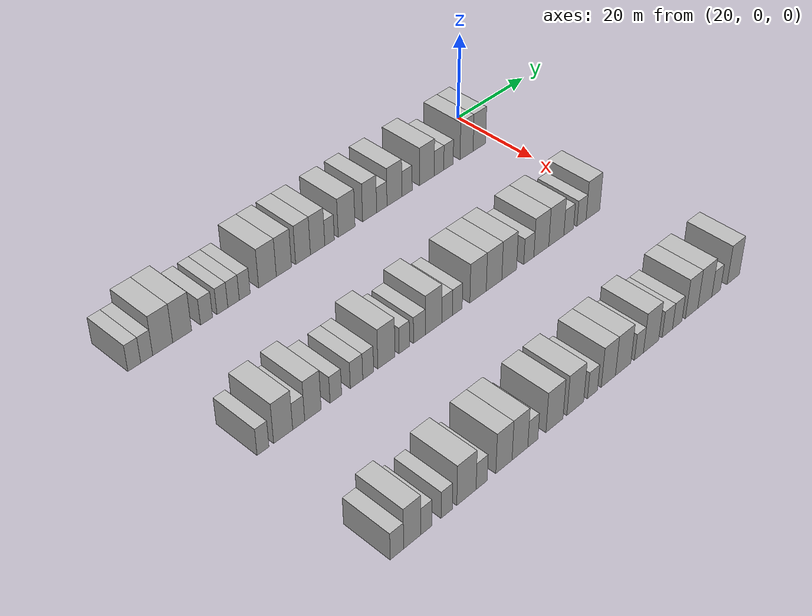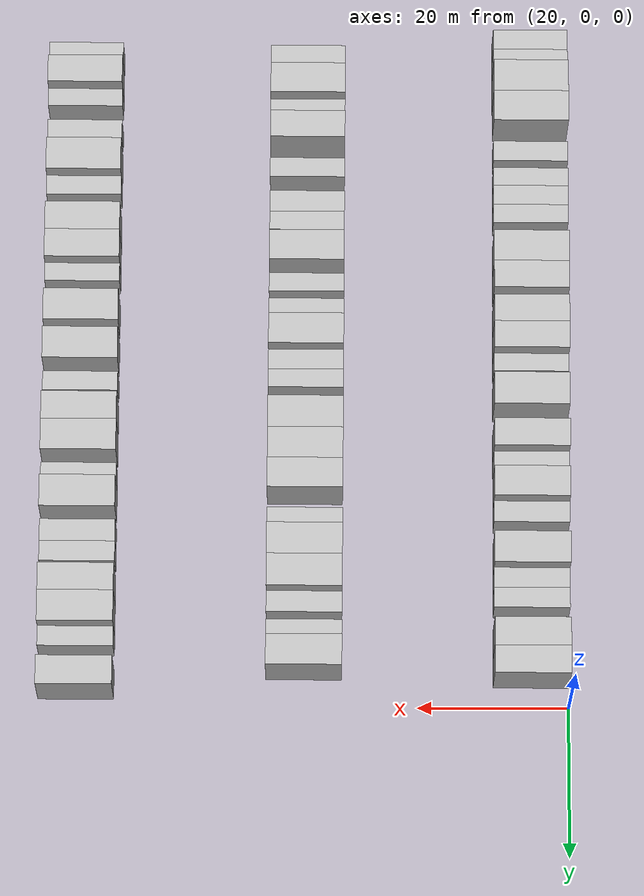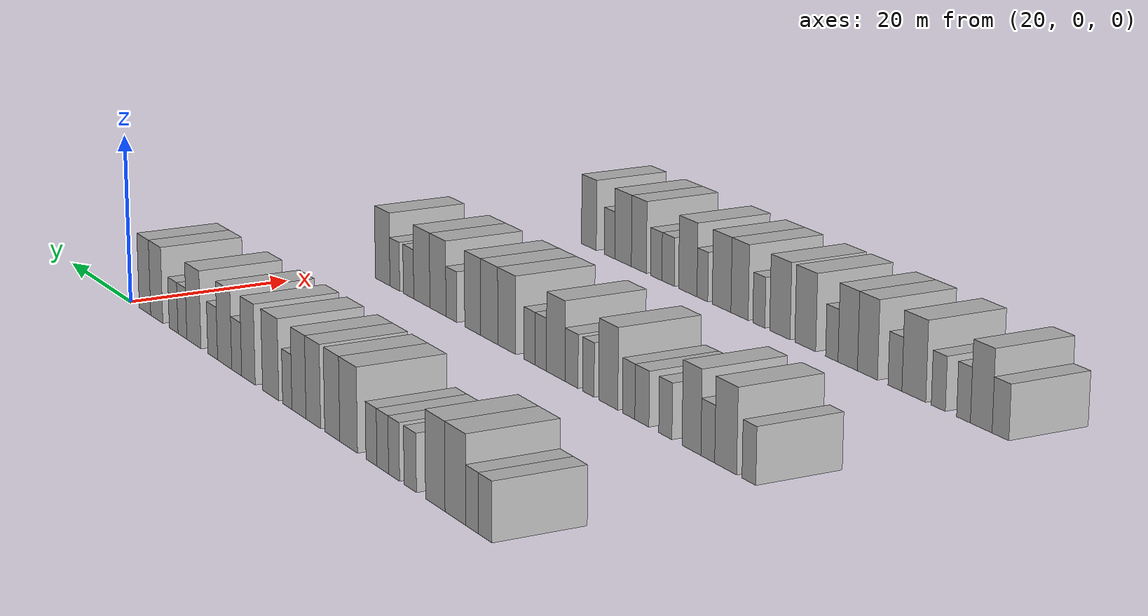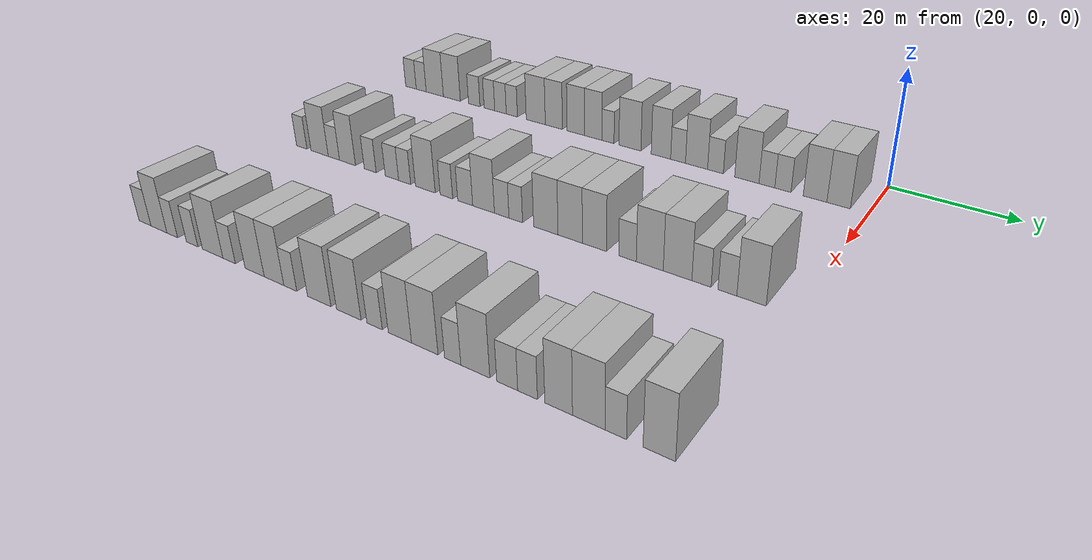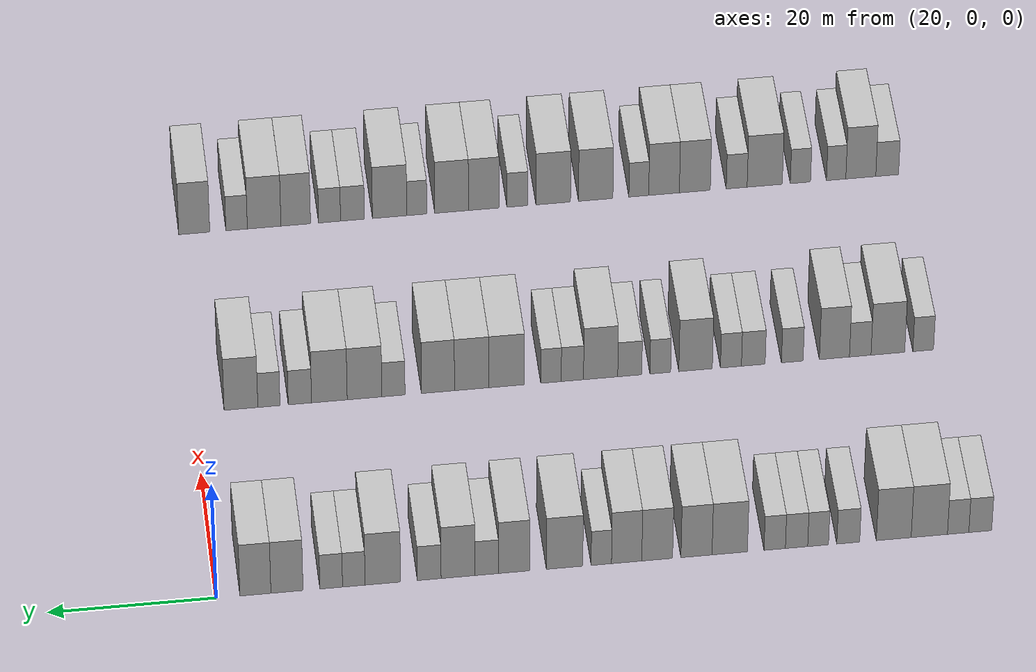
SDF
<sdf version="1.6">
 <world name="default">
  <model name="building_39">
   <static>1</static>
   <pose>25.0000 -91.4606 0 0.000000 0.000000 0.000000</pose>
   <link name="link">
    <pose>0 0 3.00 0 0 0</pose>
    <collision name="collision"><geometry><box><size>10.0000 2.7547 6.0000</size></box></geometry></collision>
    <visual name="visual">
     <cast_shadows>0</cast_shadows>
     <geometry><box><size>10.0000 2.7547 6.0000</size></box></geometry>
     <material>
      <script>
       <uri>model://HANNAS_wall/materials/scripts</uri>
       <uri>model://HANNAS_wall/materials/textures</uri>
       <name>vrc/HANNAS_wall</name>
      </script>
     </material>
    </visual>
   </link>
  </model>
  <model name="building_40">
   <static>1</static>
   <pose>25.0000 -88.7960 0 0.000000 0.000000 0.000000</pose>
   <link name="link">
    <pose>0 0 3.00 0 0 0</pose>
    <collision name="collision"><geometry><box><size>10.0000 2.5745 6.0000</size></box></geometry></collision>
    <visual name="visual">
     <cast_shadows>0</cast_shadows>
     <geometry><box><size>10.0000 2.5745 6.0000</size></box></geometry>
     <material>
      <script>
       <uri>model://HANNAS_wall/materials/scripts</uri>
       <uri>model://HANNAS_wall/materials/textures</uri>
       <name>vrc/HANNAS_wall</name>
      </script>
     </material>
    </visual>
   </link>
  </model>
  <model name="building_41">
   <static>1</static>
   <pose>25.0000 -85.3223 0 0.000000 0.000000 0.000000</pose>
   <link name="link">
    <pose>0 0 4.50 0 0 0</pose>
    <collision name="collision"><geometry><box><size>10.0000 4.3730 9.0000</size></box></geometry></collision>
    <visual name="visual">
     <cast_shadows>0</cast_shadows>
     <geometry><box><size>10.0000 4.3730 9.0000</size></box></geometry>
     <material>
      <script>
       <uri>model://HANNAS_wall/materials/scripts</uri>
       <uri>model://HANNAS_wall/materials/textures</uri>
       <name>vrc/HANNAS_wall</name>
      </script>
     </material>
    </visual>
   </link>
  </model>
  <model name="building_42">
   <static>1</static>
   <pose>25.0000 -81.0367 0 0.000000 0.000000 0.000000</pose>
   <link name="link">
    <pose>0 0 4.50 0 0 0</pose>
    <collision name="collision"><geometry><box><size>10.0000 4.1981 9.0000</size></box></geometry></collision>
    <visual name="visual">
     <cast_shadows>0</cast_shadows>
     <geometry><box><size>10.0000 4.1981 9.0000</size></box></geometry>
     <material>
      <script>
       <uri>model://HANNAS_wall/materials/scripts</uri>
       <uri>model://HANNAS_wall/materials/textures</uri>
       <name>vrc/HANNAS_wall</name>
      </script>
     </material>
    </visual>
   </link>
  </model>
  <model name="building_43">
   <static>1</static>
   <pose>25.0000 -75.5629 0 0.000000 0.000000 0.000000</pose>
   <link name="link">
    <pose>0 0 3.00 0 0 0</pose>
    <collision name="collision"><geometry><box><size>10.0000 2.7496 6.0000</size></box></geometry></collision>
    <visual name="visual">
     <cast_shadows>0</cast_shadows>
     <geometry><box><size>10.0000 2.7496 6.0000</size></box></geometry>
     <material>
      <script>
       <uri>model://HANNAS_wall/materials/scripts</uri>
       <uri>model://HANNAS_wall/materials/textures</uri>
       <name>vrc/HANNAS_wall</name>
      </script>
     </material>
    </visual>
   </link>
  </model>
  <model name="building_44">
   <static>1</static>
   <pose>25.0000 -71.9367 0 0.000000 0.000000 0.000000</pose>
   <link name="link">
    <pose>0 0 3.00 0 0 0</pose>
    <collision name="collision"><geometry><box><size>10.0000 2.5026 6.0000</size></box></geometry></collision>
    <visual name="visual">
     <cast_shadows>0</cast_shadows>
     <geometry><box><size>10.0000 2.5026 6.0000</size></box></geometry>
     <material>
      <script>
       <uri>model://HANNAS_wall/materials/scripts</uri>
       <uri>model://HANNAS_wall/materials/textures</uri>
       <name>vrc/HANNAS_wall</name>
      </script>
     </material>
    </visual>
   </link>
  </model>
  <model name="building_45">
   <static>1</static>
   <pose>25.0000 -69.3456 0 0.000000 0.000000 0.000000</pose>
   <link name="link">
    <pose>0 0 3.00 0 0 0</pose>
    <collision name="collision"><geometry><box><size>10.0000 2.6796 6.0000</size></box></geometry></collision>
    <visual name="visual">
     <cast_shadows>0</cast_shadows>
     <geometry><box><size>10.0000 2.6796 6.0000</size></box></geometry>
     <material>
      <script>
       <uri>model://HANNAS_wall/materials/scripts</uri>
       <uri>model://HANNAS_wall/materials/textures</uri>
       <name>vrc/HANNAS_wall</name>
      </script>
     </material>
    </visual>
   </link>
  </model>
  <model name="building_46">
   <static>1</static>
   <pose>25.0000 -66.7231 0 0.000000 0.000000 0.000000</pose>
   <link name="link">
    <pose>0 0 3.00 0 0 0</pose>
    <collision name="collision"><geometry><box><size>10.0000 2.5655 6.0000</size></box></geometry></collision>
    <visual name="visual">
     <cast_shadows>0</cast_shadows>
     <geometry><box><size>10.0000 2.5655 6.0000</size></box></geometry>
     <material>
      <script>
       <uri>model://HANNAS_wall/materials/scripts</uri>
       <uri>model://HANNAS_wall/materials/textures</uri>
       <name>vrc/HANNAS_wall</name>
      </script>
     </material>
    </visual>
   </link>
  </model>
  <model name="building_47">
   <static>1</static>
   <pose>25.0000 -61.3182 0 0.000000 0.000000 0.000000</pose>
   <link name="link">
    <pose>0 0 4.50 0 0 0</pose>
    <collision name="collision"><geometry><box><size>10.0000 4.2443 9.0000</size></box></geometry></collision>
    <visual name="visual">
     <cast_shadows>0</cast_shadows>
     <geometry><box><size>10.0000 4.2443 9.0000</size></box></geometry>
     <material>
      <script>
       <uri>model://HANNAS_wall/materials/scripts</uri>
       <uri>model://HANNAS_wall/materials/textures</uri>
       <name>vrc/HANNAS_wall</name>
      </script>
     </material>
    </visual>
   </link>
  </model>
  <model name="building_48">
   <static>1</static>
   <pose>25.0000 -57.3320 0 0.000000 0.000000 0.000000</pose>
   <link name="link">
    <pose>0 0 4.50 0 0 0</pose>
    <collision name="collision"><geometry><box><size>10.0000 3.7281 9.0000</size></box></geometry></collision>
    <visual name="visual">
     <cast_shadows>0</cast_shadows>
     <geometry><box><size>10.0000 3.7281 9.0000</size></box></geometry>
     <material>
      <script>
       <uri>model://HANNAS_wall/materials/scripts</uri>
       <uri>model://HANNAS_wall/materials/textures</uri>
       <name>vrc/HANNAS_wall</name>
      </script>
     </material>
    </visual>
   </link>
  </model>
  <model name="building_49">
   <static>1</static>
   <pose>25.0000 -52.6227 0 0.000000 0.000000 0.000000</pose>
   <link name="link">
    <pose>0 0 4.50 0 0 0</pose>
    <collision name="collision"><geometry><box><size>10.0000 3.6904 9.0000</size></box></geometry></collision>
    <visual name="visual">
     <cast_shadows>0</cast_shadows>
     <geometry><box><size>10.0000 3.6904 9.0000</size></box></geometry>
     <material>
      <script>
       <uri>model://HANNAS_wall/materials/scripts</uri>
       <uri>model://HANNAS_wall/materials/textures</uri>
       <name>vrc/HANNAS_wall</name>
      </script>
     </material>
    </visual>
   </link>
  </model>
  <model name="building_50">
   <static>1</static>
   <pose>25.0000 -48.9638 0 0.000000 0.000000 0.000000</pose>
   <link name="link">
    <pose>0 0 4.50 0 0 0</pose>
    <collision name="collision"><geometry><box><size>10.0000 3.6275 9.0000</size></box></geometry></collision>
    <visual name="visual">
     <cast_shadows>0</cast_shadows>
     <geometry><box><size>10.0000 3.6275 9.0000</size></box></geometry>
     <material>
      <script>
       <uri>model://HANNAS_wall/materials/scripts</uri>
       <uri>model://HANNAS_wall/materials/textures</uri>
       <name>vrc/HANNAS_wall</name>
      </script>
     </material>
    </visual>
   </link>
  </model>
  <model name="building_51">
   <static>1</static>
   <pose>25.0000 -45.9309 0 0.000000 0.000000 0.000000</pose>
   <link name="link">
    <pose>0 0 3.00 0 0 0</pose>
    <collision name="collision"><geometry><box><size>10.0000 2.4381 6.0000</size></box></geometry></collision>
    <visual name="visual">
     <cast_shadows>0</cast_shadows>
     <geometry><box><size>10.0000 2.4381 6.0000</size></box></geometry>
     <material>
      <script>
       <uri>model://HANNAS_wall/materials/scripts</uri>
       <uri>model://HANNAS_wall/materials/textures</uri>
       <name>vrc/HANNAS_wall</name>
      </script>
     </material>
    </visual>
   </link>
  </model>
  <model name="building_52">
   <static>1</static>
   <pose>25.0000 -41.5327 0 0.000000 0.000000 0.000000</pose>
   <link name="link">
    <pose>0 0 4.50 0 0 0</pose>
    <collision name="collision"><geometry><box><size>10.0000 4.3584 9.0000</size></box></geometry></collision>
    <visual name="visual">
     <cast_shadows>0</cast_shadows>
     <geometry><box><size>10.0000 4.3584 9.0000</size></box></geometry>
     <material>
      <script>
       <uri>model://HANNAS_wall/materials/scripts</uri>
       <uri>model://HANNAS_wall/materials/textures</uri>
       <name>vrc/HANNAS_wall</name>
      </script>
     </material>
    </visual>
   </link>
  </model>
  <model name="building_53">
   <static>1</static>
   <pose>25.0000 -35.4895 0 0.000000 0.000000 0.000000</pose>
   <link name="link">
    <pose>0 0 4.50 0 0 0</pose>
    <collision name="collision"><geometry><box><size>10.0000 3.7280 9.0000</size></box></geometry></collision>
    <visual name="visual">
     <cast_shadows>0</cast_shadows>
     <geometry><box><size>10.0000 3.7280 9.0000</size></box></geometry>
     <material>
      <script>
       <uri>model://HANNAS_wall/materials/scripts</uri>
       <uri>model://HANNAS_wall/materials/textures</uri>
       <name>vrc/HANNAS_wall</name>
      </script>
     </material>
    </visual>
   </link>
  </model>
  <model name="building_54">
   <static>1</static>
   <pose>25.0000 -32.2355 0 0.000000 0.000000 0.000000</pose>
   <link name="link">
    <pose>0 0 3.00 0 0 0</pose>
    <collision name="collision"><geometry><box><size>10.0000 2.7799 6.0000</size></box></geometry></collision>
    <visual name="visual">
     <cast_shadows>0</cast_shadows>
     <geometry><box><size>10.0000 2.7799 6.0000</size></box></geometry>
     <material>
      <script>
       <uri>model://HANNAS_wall/materials/scripts</uri>
       <uri>model://HANNAS_wall/materials/textures</uri>
       <name>vrc/HANNAS_wall</name>
      </script>
     </material>
    </visual>
   </link>
  </model>
  <model name="building_55">
   <static>1</static>
   <pose>25.0000 -28.8138 0 0.000000 0.000000 0.000000</pose>
   <link name="link">
    <pose>0 0 4.50 0 0 0</pose>
    <collision name="collision"><geometry><box><size>10.0000 4.0635 9.0000</size></box></geometry></collision>
    <visual name="visual">
     <cast_shadows>0</cast_shadows>
     <geometry><box><size>10.0000 4.0635 9.0000</size></box></geometry>
     <material>
      <script>
       <uri>model://HANNAS_wall/materials/scripts</uri>
       <uri>model://HANNAS_wall/materials/textures</uri>
       <name>vrc/HANNAS_wall</name>
      </script>
     </material>
    </visual>
   </link>
  </model>
  <model name="building_56">
   <static>1</static>
   <pose>25.0000 -25.3644 0 0.000000 0.000000 0.000000</pose>
   <link name="link">
    <pose>0 0 3.00 0 0 0</pose>
    <collision name="collision"><geometry><box><size>10.0000 2.8352 6.0000</size></box></geometry></collision>
    <visual name="visual">
     <cast_shadows>0</cast_shadows>
     <geometry><box><size>10.0000 2.8352 6.0000</size></box></geometry>
     <material>
      <script>
       <uri>model://HANNAS_wall/materials/scripts</uri>
       <uri>model://HANNAS_wall/materials/textures</uri>
       <name>vrc/HANNAS_wall</name>
      </script>
     </material>
    </visual>
   </link>
  </model>
  <model name="building_57">
   <static>1</static>
   <pose>25.0000 -19.8324 0 0.000000 0.000000 0.000000</pose>
   <link name="link">
    <pose>0 0 4.50 0 0 0</pose>
    <collision name="collision"><geometry><box><size>10.0000 4.2289 9.0000</size></box></geometry></collision>
    <visual name="visual">
     <cast_shadows>0</cast_shadows>
     <geometry><box><size>10.0000 4.2289 9.0000</size></box></geometry>
     <material>
      <script>
       <uri>model://HANNAS_wall/materials/scripts</uri>
       <uri>model://HANNAS_wall/materials/textures</uri>
       <name>vrc/HANNAS_wall</name>
      </script>
     </material>
    </visual>
   </link>
  </model>
  <model name="building_58">
   <static>1</static>
   <pose>25.0000 -16.3738 0 0.000000 0.000000 0.000000</pose>
   <link name="link">
    <pose>0 0 3.00 0 0 0</pose>
    <collision name="collision"><geometry><box><size>10.0000 2.6883 6.0000</size></box></geometry></collision>
    <visual name="visual">
     <cast_shadows>0</cast_shadows>
     <geometry><box><size>10.0000 2.6883 6.0000</size></box></geometry>
     <material>
      <script>
       <uri>model://HANNAS_wall/materials/scripts</uri>
       <uri>model://HANNAS_wall/materials/textures</uri>
       <name>vrc/HANNAS_wall</name>
      </script>
     </material>
    </visual>
   </link>
  </model>
  <model name="building_59">
   <static>1</static>
   <pose>25.0000 -13.6800 0 0.000000 0.000000 0.000000</pose>
   <link name="link">
    <pose>0 0 3.00 0 0 0</pose>
    <collision name="collision"><geometry><box><size>10.0000 2.6993 6.0000</size></box></geometry></collision>
    <visual name="visual">
     <cast_shadows>0</cast_shadows>
     <geometry><box><size>10.0000 2.6993 6.0000</size></box></geometry>
     <material>
      <script>
       <uri>model://HANNAS_wall/materials/scripts</uri>
       <uri>model://HANNAS_wall/materials/textures</uri>
       <name>vrc/HANNAS_wall</name>
      </script>
     </material>
    </visual>
   </link>
  </model>
  <model name="building_60">
   <static>1</static>
   <pose>25.0000 -8.4190 0 0.000000 0.000000 0.000000</pose>
   <link name="link">
    <pose>0 0 4.50 0 0 0</pose>
    <collision name="collision"><geometry><box><size>10.0000 3.8228 9.0000</size></box></geometry></collision>
    <visual name="visual">
     <cast_shadows>0</cast_shadows>
     <geometry><box><size>10.0000 3.8228 9.0000</size></box></geometry>
     <material>
      <script>
       <uri>model://HANNAS_wall/materials/scripts</uri>
       <uri>model://HANNAS_wall/materials/textures</uri>
       <name>vrc/HANNAS_wall</name>
      </script>
     </material>
    </visual>
   </link>
  </model>
  <model name="building_61">
   <static>1</static>
   <pose>25.0000 -4.6636 0 0.000000 0.000000 0.000000</pose>
   <link name="link">
    <pose>0 0 4.50 0 0 0</pose>
    <collision name="collision"><geometry><box><size>10.0000 3.6881 9.0000</size></box></geometry></collision>
    <visual name="visual">
     <cast_shadows>0</cast_shadows>
     <geometry><box><size>10.0000 3.6881 9.0000</size></box></geometry>
     <material>
      <script>
       <uri>model://HANNAS_wall/materials/scripts</uri>
       <uri>model://HANNAS_wall/materials/textures</uri>
       <name>vrc/HANNAS_wall</name>
      </script>
     </material>
    </visual>
   </link>
  </model>
  <model name="building_174">
   <static>1</static>
   <pose>55.0000 -89.1404 0 0.000000 0.000000 0.000000</pose>
   <link name="link">
    <pose>0 0 3.00 0 0 0</pose>
    <collision name="collision"><geometry><box><size>10.0000 2.5405 6.0000</size></box></geometry></collision>
    <visual name="visual">
     <cast_shadows>0</cast_shadows>
     <geometry><box><size>10.0000 2.5405 6.0000</size></box></geometry>
     <material>
      <script>
       <uri>model://HANNAS_wall/materials/scripts</uri>
       <uri>model://HANNAS_wall/materials/textures</uri>
       <name>vrc/HANNAS_wall</name>
      </script>
     </material>
    </visual>
   </link>
  </model>
  <model name="building_175">
   <static>1</static>
   <pose>55.0000 -84.7976 0 0.000000 0.000000 0.000000</pose>
   <link name="link">
    <pose>0 0 4.50 0 0 0</pose>
    <collision name="collision"><geometry><box><size>10.0000 4.1451 9.0000</size></box></geometry></collision>
    <visual name="visual">
     <cast_shadows>0</cast_shadows>
     <geometry><box><size>10.0000 4.1451 9.0000</size></box></geometry>
     <material>
      <script>
       <uri>model://HANNAS_wall/materials/scripts</uri>
       <uri>model://HANNAS_wall/materials/textures</uri>
       <name>vrc/HANNAS_wall</name>
      </script>
     </material>
    </visual>
   </link>
  </model>
  <model name="building_176">
   <static>1</static>
   <pose>55.0000 -81.3994 0 0.000000 0.000000 0.000000</pose>
   <link name="link">
    <pose>0 0 3.00 0 0 0</pose>
    <collision name="collision"><geometry><box><size>10.0000 2.6512 6.0000</size></box></geometry></collision>
    <visual name="visual">
     <cast_shadows>0</cast_shadows>
     <geometry><box><size>10.0000 2.6512 6.0000</size></box></geometry>
     <material>
      <script>
       <uri>model://HANNAS_wall/materials/scripts</uri>
       <uri>model://HANNAS_wall/materials/textures</uri>
       <name>vrc/HANNAS_wall</name>
      </script>
     </material>
    </visual>
   </link>
  </model>
  <model name="building_177">
   <static>1</static>
   <pose>55.0000 -78.2285 0 0.000000 0.000000 0.000000</pose>
   <link name="link">
    <pose>0 0 4.50 0 0 0</pose>
    <collision name="collision"><geometry><box><size>10.0000 3.6905 9.0000</size></box></geometry></collision>
    <visual name="visual">
     <cast_shadows>0</cast_shadows>
     <geometry><box><size>10.0000 3.6905 9.0000</size></box></geometry>
     <material>
      <script>
       <uri>model://HANNAS_wall/materials/scripts</uri>
       <uri>model://HANNAS_wall/materials/textures</uri>
       <name>vrc/HANNAS_wall</name>
      </script>
     </material>
    </visual>
   </link>
  </model>
  <model name="building_178">
   <static>1</static>
   <pose>55.0000 -73.0543 0 0.000000 0.000000 0.000000</pose>
   <link name="link">
    <pose>0 0 3.00 0 0 0</pose>
    <collision name="collision"><geometry><box><size>10.0000 2.6578 6.0000</size></box></geometry></collision>
    <visual name="visual">
     <cast_shadows>0</cast_shadows>
     <geometry><box><size>10.0000 2.6578 6.0000</size></box></geometry>
     <material>
      <script>
       <uri>model://HANNAS_wall/materials/scripts</uri>
       <uri>model://HANNAS_wall/materials/textures</uri>
       <name>vrc/HANNAS_wall</name>
      </script>
     </material>
    </visual>
   </link>
  </model>
  <model name="building_179">
   <static>1</static>
   <pose>55.0000 -68.2735 0 0.000000 0.000000 0.000000</pose>
   <link name="link">
    <pose>0 0 3.00 0 0 0</pose>
    <collision name="collision"><geometry><box><size>10.0000 2.9038 6.0000</size></box></geometry></collision>
    <visual name="visual">
     <cast_shadows>0</cast_shadows>
     <geometry><box><size>10.0000 2.9038 6.0000</size></box></geometry>
     <material>
      <script>
       <uri>model://HANNAS_wall/materials/scripts</uri>
       <uri>model://HANNAS_wall/materials/textures</uri>
       <name>vrc/HANNAS_wall</name>
      </script>
     </material>
    </visual>
   </link>
  </model>
  <model name="building_180">
   <static>1</static>
   <pose>55.0000 -65.5359 0 0.000000 0.000000 0.000000</pose>
   <link name="link">
    <pose>0 0 3.00 0 0 0</pose>
    <collision name="collision"><geometry><box><size>10.0000 2.5714 6.0000</size></box></geometry></collision>
    <visual name="visual">
     <cast_shadows>0</cast_shadows>
     <geometry><box><size>10.0000 2.5714 6.0000</size></box></geometry>
     <material>
      <script>
       <uri>model://HANNAS_wall/materials/scripts</uri>
       <uri>model://HANNAS_wall/materials/textures</uri>
       <name>vrc/HANNAS_wall</name>
      </script>
     </material>
    </visual>
   </link>
  </model>
  <model name="building_181">
   <static>1</static>
   <pose>55.0000 -61.1989 0 0.000000 0.000000 0.000000</pose>
   <link name="link">
    <pose>0 0 4.50 0 0 0</pose>
    <collision name="collision"><geometry><box><size>10.0000 4.1026 9.0000</size></box></geometry></collision>
    <visual name="visual">
     <cast_shadows>0</cast_shadows>
     <geometry><box><size>10.0000 4.1026 9.0000</size></box></geometry>
     <material>
      <script>
       <uri>model://HANNAS_wall/materials/scripts</uri>
       <uri>model://HANNAS_wall/materials/textures</uri>
       <name>vrc/HANNAS_wall</name>
      </script>
     </material>
    </visual>
   </link>
  </model>
  <model name="building_182">
   <static>1</static>
   <pose>55.0000 -56.8801 0 0.000000 0.000000 0.000000</pose>
   <link name="link">
    <pose>0 0 3.00 0 0 0</pose>
    <collision name="collision"><geometry><box><size>10.0000 2.5350 6.0000</size></box></geometry></collision>
    <visual name="visual">
     <cast_shadows>0</cast_shadows>
     <geometry><box><size>10.0000 2.5350 6.0000</size></box></geometry>
     <material>
      <script>
       <uri>model://HANNAS_wall/materials/scripts</uri>
       <uri>model://HANNAS_wall/materials/textures</uri>
       <name>vrc/HANNAS_wall</name>
      </script>
     </material>
    </visual>
   </link>
  </model>
  <model name="building_183">
   <static>1</static>
   <pose>55.0000 -53.1420 0 0.000000 0.000000 0.000000</pose>
   <link name="link">
    <pose>0 0 3.00 0 0 0</pose>
    <collision name="collision"><geometry><box><size>10.0000 2.9413 6.0000</size></box></geometry></collision>
    <visual name="visual">
     <cast_shadows>0</cast_shadows>
     <geometry><box><size>10.0000 2.9413 6.0000</size></box></geometry>
     <material>
      <script>
       <uri>model://HANNAS_wall/materials/scripts</uri>
       <uri>model://HANNAS_wall/materials/textures</uri>
       <name>vrc/HANNAS_wall</name>
      </script>
     </material>
    </visual>
   </link>
  </model>
  <model name="building_184">
   <static>1</static>
   <pose>55.0000 -49.5816 0 0.000000 0.000000 0.000000</pose>
   <link name="link">
    <pose>0 0 4.50 0 0 0</pose>
    <collision name="collision"><geometry><box><size>10.0000 4.1795 9.0000</size></box></geometry></collision>
    <visual name="visual">
     <cast_shadows>0</cast_shadows>
     <geometry><box><size>10.0000 4.1795 9.0000</size></box></geometry>
     <material>
      <script>
       <uri>model://HANNAS_wall/materials/scripts</uri>
       <uri>model://HANNAS_wall/materials/textures</uri>
       <name>vrc/HANNAS_wall</name>
      </script>
     </material>
    </visual>
   </link>
  </model>
  <model name="building_185">
   <static>1</static>
   <pose>55.0000 -46.1320 0 0.000000 0.000000 0.000000</pose>
   <link name="link">
    <pose>0 0 3.00 0 0 0</pose>
    <collision name="collision"><geometry><box><size>10.0000 2.7198 6.0000</size></box></geometry></collision>
    <visual name="visual">
     <cast_shadows>0</cast_shadows>
     <geometry><box><size>10.0000 2.7198 6.0000</size></box></geometry>
     <material>
      <script>
       <uri>model://HANNAS_wall/materials/scripts</uri>
       <uri>model://HANNAS_wall/materials/textures</uri>
       <name>vrc/HANNAS_wall</name>
      </script>
     </material>
    </visual>
   </link>
  </model>
  <model name="building_186">
   <static>1</static>
   <pose>55.0000 -43.5175 0 0.000000 0.000000 0.000000</pose>
   <link name="link">
    <pose>0 0 3.00 0 0 0</pose>
    <collision name="collision"><geometry><box><size>10.0000 2.5092 6.0000</size></box></geometry></collision>
    <visual name="visual">
     <cast_shadows>0</cast_shadows>
     <geometry><box><size>10.0000 2.5092 6.0000</size></box></geometry>
     <material>
      <script>
       <uri>model://HANNAS_wall/materials/scripts</uri>
       <uri>model://HANNAS_wall/materials/textures</uri>
       <name>vrc/HANNAS_wall</name>
      </script>
     </material>
    </visual>
   </link>
  </model>
  <model name="building_187">
   <static>1</static>
   <pose>55.0000 -38.0969 0 0.000000 0.000000 0.000000</pose>
   <link name="link">
    <pose>0 0 4.50 0 0 0</pose>
    <collision name="collision"><geometry><box><size>10.0000 4.3320 9.0000</size></box></geometry></collision>
    <visual name="visual">
     <cast_shadows>0</cast_shadows>
     <geometry><box><size>10.0000 4.3320 9.0000</size></box></geometry>
     <material>
      <script>
       <uri>model://HANNAS_wall/materials/scripts</uri>
       <uri>model://HANNAS_wall/materials/textures</uri>
       <name>vrc/HANNAS_wall</name>
      </script>
     </material>
    </visual>
   </link>
  </model>
  <model name="building_188">
   <static>1</static>
   <pose>55.0000 -33.8358 0 0.000000 0.000000 0.000000</pose>
   <link name="link">
    <pose>0 0 4.50 0 0 0</pose>
    <collision name="collision"><geometry><box><size>10.0000 4.1904 9.0000</size></box></geometry></collision>
    <visual name="visual">
     <cast_shadows>0</cast_shadows>
     <geometry><box><size>10.0000 4.1904 9.0000</size></box></geometry>
     <material>
      <script>
       <uri>model://HANNAS_wall/materials/scripts</uri>
       <uri>model://HANNAS_wall/materials/textures</uri>
       <name>vrc/HANNAS_wall</name>
      </script>
     </material>
    </visual>
   </link>
  </model>
  <model name="building_189">
   <static>1</static>
   <pose>55.0000 -29.7267 0 0.000000 0.000000 0.000000</pose>
   <link name="link">
    <pose>0 0 4.50 0 0 0</pose>
    <collision name="collision"><geometry><box><size>10.0000 4.0277 9.0000</size></box></geometry></collision>
    <visual name="visual">
     <cast_shadows>0</cast_shadows>
     <geometry><box><size>10.0000 4.0277 9.0000</size></box></geometry>
     <material>
      <script>
       <uri>model://HANNAS_wall/materials/scripts</uri>
       <uri>model://HANNAS_wall/materials/textures</uri>
       <name>vrc/HANNAS_wall</name>
      </script>
     </material>
    </visual>
   </link>
  </model>
  <model name="building_190">
   <static>1</static>
   <pose>55.0000 -24.3051 0 0.000000 0.000000 0.000000</pose>
   <link name="link">
    <pose>0 0 3.00 0 0 0</pose>
    <collision name="collision"><geometry><box><size>10.0000 2.8154 6.0000</size></box></geometry></collision>
    <visual name="visual">
     <cast_shadows>0</cast_shadows>
     <geometry><box><size>10.0000 2.8154 6.0000</size></box></geometry>
     <material>
      <script>
       <uri>model://HANNAS_wall/materials/scripts</uri>
       <uri>model://HANNAS_wall/materials/textures</uri>
       <name>vrc/HANNAS_wall</name>
      </script>
     </material>
    </visual>
   </link>
  </model>
  <model name="building_191">
   <static>1</static>
   <pose>55.0000 -20.7871 0 0.000000 0.000000 0.000000</pose>
   <link name="link">
    <pose>0 0 4.50 0 0 0</pose>
    <collision name="collision"><geometry><box><size>10.0000 4.2207 9.0000</size></box></geometry></collision>
    <visual name="visual">
     <cast_shadows>0</cast_shadows>
     <geometry><box><size>10.0000 4.2207 9.0000</size></box></geometry>
     <material>
      <script>
       <uri>model://HANNAS_wall/materials/scripts</uri>
       <uri>model://HANNAS_wall/materials/textures</uri>
       <name>vrc/HANNAS_wall</name>
      </script>
     </material>
    </visual>
   </link>
  </model>
  <model name="building_192">
   <static>1</static>
   <pose>55.0000 -16.5079 0 0.000000 0.000000 0.000000</pose>
   <link name="link">
    <pose>0 0 4.50 0 0 0</pose>
    <collision name="collision"><geometry><box><size>10.0000 4.3378 9.0000</size></box></geometry></collision>
    <visual name="visual">
     <cast_shadows>0</cast_shadows>
     <geometry><box><size>10.0000 4.3378 9.0000</size></box></geometry>
     <material>
      <script>
       <uri>model://HANNAS_wall/materials/scripts</uri>
       <uri>model://HANNAS_wall/materials/textures</uri>
       <name>vrc/HANNAS_wall</name>
      </script>
     </material>
    </visual>
   </link>
  </model>
  <model name="building_193">
   <static>1</static>
   <pose>55.0000 -12.9216 0 0.000000 0.000000 0.000000</pose>
   <link name="link">
    <pose>0 0 3.00 0 0 0</pose>
    <collision name="collision"><geometry><box><size>10.0000 2.8348 6.0000</size></box></geometry></collision>
    <visual name="visual">
     <cast_shadows>0</cast_shadows>
     <geometry><box><size>10.0000 2.8348 6.0000</size></box></geometry>
     <material>
      <script>
       <uri>model://HANNAS_wall/materials/scripts</uri>
       <uri>model://HANNAS_wall/materials/textures</uri>
       <name>vrc/HANNAS_wall</name>
      </script>
     </material>
    </visual>
   </link>
  </model>
  <model name="building_194">
   <static>1</static>
   <pose>55.0000 -9.1570 0 0.000000 0.000000 0.000000</pose>
   <link name="link">
    <pose>0 0 3.00 0 0 0</pose>
    <collision name="collision"><geometry><box><size>10.0000 2.6945 6.0000</size></box></geometry></collision>
    <visual name="visual">
     <cast_shadows>0</cast_shadows>
     <geometry><box><size>10.0000 2.6945 6.0000</size></box></geometry>
     <material>
      <script>
       <uri>model://HANNAS_wall/materials/scripts</uri>
       <uri>model://HANNAS_wall/materials/textures</uri>
       <name>vrc/HANNAS_wall</name>
      </script>
     </material>
    </visual>
   </link>
  </model>
  <model name="building_195">
   <static>1</static>
   <pose>55.0000 -5.7617 0 0.000000 0.000000 0.000000</pose>
   <link name="link">
    <pose>0 0 4.50 0 0 0</pose>
    <collision name="collision"><geometry><box><size>10.0000 4.0960 9.0000</size></box></geometry></collision>
    <visual name="visual">
     <cast_shadows>0</cast_shadows>
     <geometry><box><size>10.0000 4.0960 9.0000</size></box></geometry>
     <material>
      <script>
       <uri>model://HANNAS_wall/materials/scripts</uri>
       <uri>model://HANNAS_wall/materials/textures</uri>
       <name>vrc/HANNAS_wall</name>
      </script>
     </material>
    </visual>
   </link>
  </model>
  <model name="building_306">
   <static>1</static>
   <pose>85.0000 -89.1768 0 0.000000 0.000000 0.000000</pose>
   <link name="link">
    <pose>0 0 3.00 0 0 0</pose>
    <collision name="collision"><geometry><box><size>10.0000 2.8586 6.0000</size></box></geometry></collision>
    <visual name="visual">
     <cast_shadows>0</cast_shadows>
     <geometry><box><size>10.0000 2.8586 6.0000</size></box></geometry>
     <material>
      <script>
       <uri>model://HANNAS_wall/materials/scripts</uri>
       <uri>model://HANNAS_wall/materials/textures</uri>
       <name>vrc/HANNAS_wall</name>
      </script>
     </material>
    </visual>
   </link>
  </model>
  <model name="building_307">
   <static>1</static>
   <pose>85.0000 -85.8670 0 0.000000 0.000000 0.000000</pose>
   <link name="link">
    <pose>0 0 4.50 0 0 0</pose>
    <collision name="collision"><geometry><box><size>10.0000 3.7610 9.0000</size></box></geometry></collision>
    <visual name="visual">
     <cast_shadows>0</cast_shadows>
     <geometry><box><size>10.0000 3.7610 9.0000</size></box></geometry>
     <material>
      <script>
       <uri>model://HANNAS_wall/materials/scripts</uri>
       <uri>model://HANNAS_wall/materials/textures</uri>
       <name>vrc/HANNAS_wall</name>
      </script>
     </material>
    </visual>
   </link>
  </model>
  <model name="building_308">
   <static>1</static>
   <pose>85.0000 -82.7755 0 0.000000 0.000000 0.000000</pose>
   <link name="link">
    <pose>0 0 3.00 0 0 0</pose>
    <collision name="collision"><geometry><box><size>10.0000 2.4220 6.0000</size></box></geometry></collision>
    <visual name="visual">
     <cast_shadows>0</cast_shadows>
     <geometry><box><size>10.0000 2.4220 6.0000</size></box></geometry>
     <material>
      <script>
       <uri>model://HANNAS_wall/materials/scripts</uri>
       <uri>model://HANNAS_wall/materials/textures</uri>
       <name>vrc/HANNAS_wall</name>
      </script>
     </material>
    </visual>
   </link>
  </model>
  <model name="building_309">
   <static>1</static>
   <pose>85.0000 -78.2965 0 0.000000 0.000000 0.000000</pose>
   <link name="link">
    <pose>0 0 3.00 0 0 0</pose>
    <collision name="collision"><geometry><box><size>10.0000 2.5358 6.0000</size></box></geometry></collision>
    <visual name="visual">
     <cast_shadows>0</cast_shadows>
     <geometry><box><size>10.0000 2.5358 6.0000</size></box></geometry>
     <material>
      <script>
       <uri>model://HANNAS_wall/materials/scripts</uri>
       <uri>model://HANNAS_wall/materials/textures</uri>
       <name>vrc/HANNAS_wall</name>
      </script>
     </material>
    </visual>
   </link>
  </model>
  <model name="building_310">
   <static>1</static>
   <pose>85.0000 -73.8247 0 0.000000 0.000000 0.000000</pose>
   <link name="link">
    <pose>0 0 4.50 0 0 0</pose>
    <collision name="collision"><geometry><box><size>10.0000 4.4079 9.0000</size></box></geometry></collision>
    <visual name="visual">
     <cast_shadows>0</cast_shadows>
     <geometry><box><size>10.0000 4.4079 9.0000</size></box></geometry>
     <material>
      <script>
       <uri>model://HANNAS_wall/materials/scripts</uri>
       <uri>model://HANNAS_wall/materials/textures</uri>
       <name>vrc/HANNAS_wall</name>
      </script>
     </material>
    </visual>
   </link>
  </model>
  <model name="building_311">
   <static>1</static>
   <pose>85.0000 -70.3159 0 0.000000 0.000000 0.000000</pose>
   <link name="link">
    <pose>0 0 3.00 0 0 0</pose>
    <collision name="collision"><geometry><box><size>10.0000 2.6095 6.0000</size></box></geometry></collision>
    <visual name="visual">
     <cast_shadows>0</cast_shadows>
     <geometry><box><size>10.0000 2.6095 6.0000</size></box></geometry>
     <material>
      <script>
       <uri>model://HANNAS_wall/materials/scripts</uri>
       <uri>model://HANNAS_wall/materials/textures</uri>
       <name>vrc/HANNAS_wall</name>
      </script>
     </material>
    </visual>
   </link>
  </model>
  <model name="building_312">
   <static>1</static>
   <pose>85.0000 -65.0784 0 0.000000 0.000000 0.000000</pose>
   <link name="link">
    <pose>0 0 4.50 0 0 0</pose>
    <collision name="collision"><geometry><box><size>10.0000 3.8656 9.0000</size></box></geometry></collision>
    <visual name="visual">
     <cast_shadows>0</cast_shadows>
     <geometry><box><size>10.0000 3.8656 9.0000</size></box></geometry>
     <material>
      <script>
       <uri>model://HANNAS_wall/materials/scripts</uri>
       <uri>model://HANNAS_wall/materials/textures</uri>
       <name>vrc/HANNAS_wall</name>
      </script>
     </material>
    </visual>
   </link>
  </model>
  <model name="building_313">
   <static>1</static>
   <pose>85.0000 -61.2323 0 0.000000 0.000000 0.000000</pose>
   <link name="link">
    <pose>0 0 4.50 0 0 0</pose>
    <collision name="collision"><geometry><box><size>10.0000 3.8264 9.0000</size></box></geometry></collision>
    <visual name="visual">
     <cast_shadows>0</cast_shadows>
     <geometry><box><size>10.0000 3.8264 9.0000</size></box></geometry>
     <material>
      <script>
       <uri>model://HANNAS_wall/materials/scripts</uri>
       <uri>model://HANNAS_wall/materials/textures</uri>
       <name>vrc/HANNAS_wall</name>
      </script>
     </material>
    </visual>
   </link>
  </model>
  <model name="building_314">
   <static>1</static>
   <pose>85.0000 -58.0804 0 0.000000 0.000000 0.000000</pose>
   <link name="link">
    <pose>0 0 3.00 0 0 0</pose>
    <collision name="collision"><geometry><box><size>10.0000 2.4775 6.0000</size></box></geometry></collision>
    <visual name="visual">
     <cast_shadows>0</cast_shadows>
     <geometry><box><size>10.0000 2.4775 6.0000</size></box></geometry>
     <material>
      <script>
       <uri>model://HANNAS_wall/materials/scripts</uri>
       <uri>model://HANNAS_wall/materials/textures</uri>
       <name>vrc/HANNAS_wall</name>
      </script>
     </material>
    </visual>
   </link>
  </model>
  <model name="building_315">
   <static>1</static>
   <pose>85.0000 -52.6966 0 0.000000 0.000000 0.000000</pose>
   <link name="link">
    <pose>0 0 4.50 0 0 0</pose>
    <collision name="collision"><geometry><box><size>10.0000 4.2899 9.0000</size></box></geometry></collision>
    <visual name="visual">
     <cast_shadows>0</cast_shadows>
     <geometry><box><size>10.0000 4.2899 9.0000</size></box></geometry>
     <material>
      <script>
       <uri>model://HANNAS_wall/materials/scripts</uri>
       <uri>model://HANNAS_wall/materials/textures</uri>
       <name>vrc/HANNAS_wall</name>
      </script>
     </material>
    </visual>
   </link>
  </model>
  <model name="building_316">
   <static>1</static>
   <pose>85.0000 -47.3974 0 0.000000 0.000000 0.000000</pose>
   <link name="link">
    <pose>0 0 4.50 0 0 0</pose>
    <collision name="collision"><geometry><box><size>10.0000 4.3085 9.0000</size></box></geometry></collision>
    <visual name="visual">
     <cast_shadows>0</cast_shadows>
     <geometry><box><size>10.0000 4.3085 9.0000</size></box></geometry>
     <material>
      <script>
       <uri>model://HANNAS_wall/materials/scripts</uri>
       <uri>model://HANNAS_wall/materials/textures</uri>
       <name>vrc/HANNAS_wall</name>
      </script>
     </material>
    </visual>
   </link>
  </model>
  <model name="building_317">
   <static>1</static>
   <pose>85.0000 -42.9366 0 0.000000 0.000000 0.000000</pose>
   <link name="link">
    <pose>0 0 3.00 0 0 0</pose>
    <collision name="collision"><geometry><box><size>10.0000 2.6132 6.0000</size></box></geometry></collision>
    <visual name="visual">
     <cast_shadows>0</cast_shadows>
     <geometry><box><size>10.0000 2.6132 6.0000</size></box></geometry>
     <material>
      <script>
       <uri>model://HANNAS_wall/materials/scripts</uri>
       <uri>model://HANNAS_wall/materials/textures</uri>
       <name>vrc/HANNAS_wall</name>
      </script>
     </material>
    </visual>
   </link>
  </model>
  <model name="building_318">
   <static>1</static>
   <pose>85.0000 -38.7325 0 0.000000 0.000000 0.000000</pose>
   <link name="link">
    <pose>0 0 4.50 0 0 0</pose>
    <collision name="collision"><geometry><box><size>10.0000 3.7948 9.0000</size></box></geometry></collision>
    <visual name="visual">
     <cast_shadows>0</cast_shadows>
     <geometry><box><size>10.0000 3.7948 9.0000</size></box></geometry>
     <material>
      <script>
       <uri>model://HANNAS_wall/materials/scripts</uri>
       <uri>model://HANNAS_wall/materials/textures</uri>
       <name>vrc/HANNAS_wall</name>
      </script>
     </material>
    </visual>
   </link>
  </model>
  <model name="building_319">
   <static>1</static>
   <pose>85.0000 -34.7427 0 0.000000 0.000000 0.000000</pose>
   <link name="link">
    <pose>0 0 4.50 0 0 0</pose>
    <collision name="collision"><geometry><box><size>10.0000 4.1850 9.0000</size></box></geometry></collision>
    <visual name="visual">
     <cast_shadows>0</cast_shadows>
     <geometry><box><size>10.0000 4.1850 9.0000</size></box></geometry>
     <material>
      <script>
       <uri>model://HANNAS_wall/materials/scripts</uri>
       <uri>model://HANNAS_wall/materials/textures</uri>
       <name>vrc/HANNAS_wall</name>
      </script>
     </material>
    </visual>
   </link>
  </model>
  <model name="building_320">
   <static>1</static>
   <pose>85.0000 -30.4090 0 0.000000 0.000000 0.000000</pose>
   <link name="link">
    <pose>0 0 3.00 0 0 0</pose>
    <collision name="collision"><geometry><box><size>10.0000 2.4823 6.0000</size></box></geometry></collision>
    <visual name="visual">
     <cast_shadows>0</cast_shadows>
     <geometry><box><size>10.0000 2.4823 6.0000</size></box></geometry>
     <material>
      <script>
       <uri>model://HANNAS_wall/materials/scripts</uri>
       <uri>model://HANNAS_wall/materials/textures</uri>
       <name>vrc/HANNAS_wall</name>
      </script>
     </material>
    </visual>
   </link>
  </model>
  <model name="building_321">
   <static>1</static>
   <pose>85.0000 -27.0323 0 0.000000 0.000000 0.000000</pose>
   <link name="link">
    <pose>0 0 4.50 0 0 0</pose>
    <collision name="collision"><geometry><box><size>10.0000 4.2711 9.0000</size></box></geometry></collision>
    <visual name="visual">
     <cast_shadows>0</cast_shadows>
     <geometry><box><size>10.0000 4.2711 9.0000</size></box></geometry>
     <material>
      <script>
       <uri>model://HANNAS_wall/materials/scripts</uri>
       <uri>model://HANNAS_wall/materials/textures</uri>
       <name>vrc/HANNAS_wall</name>
      </script>
     </material>
    </visual>
   </link>
  </model>
  <model name="building_322">
   <static>1</static>
   <pose>85.0000 -22.4136 0 0.000000 0.000000 0.000000</pose>
   <link name="link">
    <pose>0 0 3.00 0 0 0</pose>
    <collision name="collision"><geometry><box><size>10.0000 2.9663 6.0000</size></box></geometry></collision>
    <visual name="visual">
     <cast_shadows>0</cast_shadows>
     <geometry><box><size>10.0000 2.9663 6.0000</size></box></geometry>
     <material>
      <script>
       <uri>model://HANNAS_wall/materials/scripts</uri>
       <uri>model://HANNAS_wall/materials/textures</uri>
       <name>vrc/HANNAS_wall</name>
      </script>
     </material>
    </visual>
   </link>
  </model>
  <model name="building_323">
   <static>1</static>
   <pose>85.0000 -19.5683 0 0.000000 0.000000 0.000000</pose>
   <link name="link">
    <pose>0 0 3.00 0 0 0</pose>
    <collision name="collision"><geometry><box><size>10.0000 2.7243 6.0000</size></box></geometry></collision>
    <visual name="visual">
     <cast_shadows>0</cast_shadows>
     <geometry><box><size>10.0000 2.7243 6.0000</size></box></geometry>
     <material>
      <script>
       <uri>model://HANNAS_wall/materials/scripts</uri>
       <uri>model://HANNAS_wall/materials/textures</uri>
       <name>vrc/HANNAS_wall</name>
      </script>
     </material>
    </visual>
   </link>
  </model>
  <model name="building_324">
   <static>1</static>
   <pose>85.0000 -15.3704 0 0.000000 0.000000 0.000000</pose>
   <link name="link">
    <pose>0 0 4.50 0 0 0</pose>
    <collision name="collision"><geometry><box><size>10.0000 3.6716 9.0000</size></box></geometry></collision>
    <visual name="visual">
     <cast_shadows>0</cast_shadows>
     <geometry><box><size>10.0000 3.6716 9.0000</size></box></geometry>
     <material>
      <script>
       <uri>model://HANNAS_wall/materials/scripts</uri>
       <uri>model://HANNAS_wall/materials/textures</uri>
       <name>vrc/HANNAS_wall</name>
      </script>
     </material>
    </visual>
   </link>
  </model>
  <model name="building_325">
   <static>1</static>
   <pose>85.0000 -11.4521 0 0.000000 0.000000 0.000000</pose>
   <link name="link">
    <pose>0 0 4.50 0 0 0</pose>
    <collision name="collision"><geometry><box><size>10.0000 4.1649 9.0000</size></box></geometry></collision>
    <visual name="visual">
     <cast_shadows>0</cast_shadows>
     <geometry><box><size>10.0000 4.1649 9.0000</size></box></geometry>
     <material>
      <script>
       <uri>model://HANNAS_wall/materials/scripts</uri>
       <uri>model://HANNAS_wall/materials/textures</uri>
       <name>vrc/HANNAS_wall</name>
      </script>
     </material>
    </visual>
   </link>
  </model>
  <model name="building_326">
   <static>1</static>
   <pose>85.0000 -8.0396 0 0.000000 0.000000 0.000000</pose>
   <link name="link">
    <pose>0 0 3.00 0 0 0</pose>
    <collision name="collision"><geometry><box><size>10.0000 2.6602 6.0000</size></box></geometry></collision>
    <visual name="visual">
     <cast_shadows>0</cast_shadows>
     <geometry><box><size>10.0000 2.6602 6.0000</size></box></geometry>
     <material>
      <script>
       <uri>model://HANNAS_wall/materials/scripts</uri>
       <uri>model://HANNAS_wall/materials/textures</uri>
       <name>vrc/HANNAS_wall</name>
      </script>
     </material>
    </visual>
   </link>
  </model>
  <model name="building_327">
   <static>1</static>
   <pose>85.0000 -2.7916 0 0.000000 0.000000 0.000000</pose>
   <link name="link">
    <pose>0 0 4.50 0 0 0</pose>
    <collision name="collision"><geometry><box><size>10.0000 3.8359 9.0000</size></box></geometry></collision>
    <visual name="visual">
     <cast_shadows>0</cast_shadows>
     <geometry><box><size>10.0000 3.8359 9.0000</size></box></geometry>
     <material>
      <script>
       <uri>model://HANNAS_wall/materials/scripts</uri>
       <uri>model://HANNAS_wall/materials/textures</uri>
       <name>vrc/HANNAS_wall</name>
      </script>
     </material>
    </visual>
   </link>
  </model>
 </world>
</sdf>
